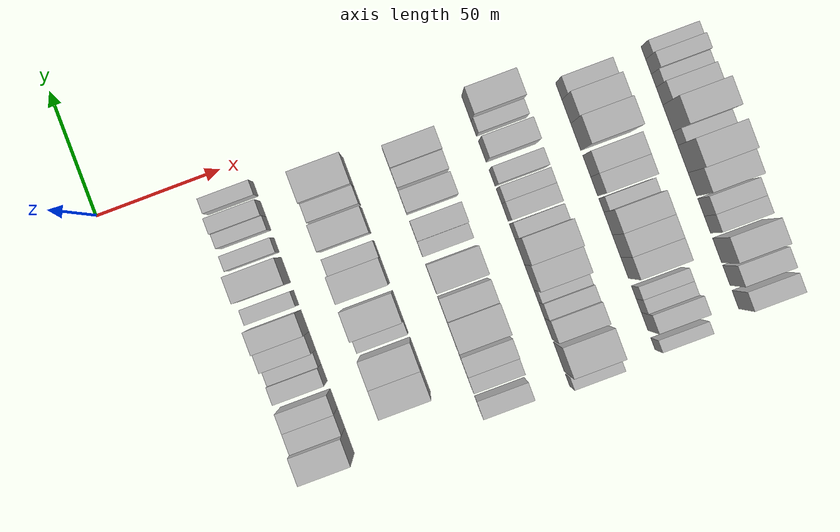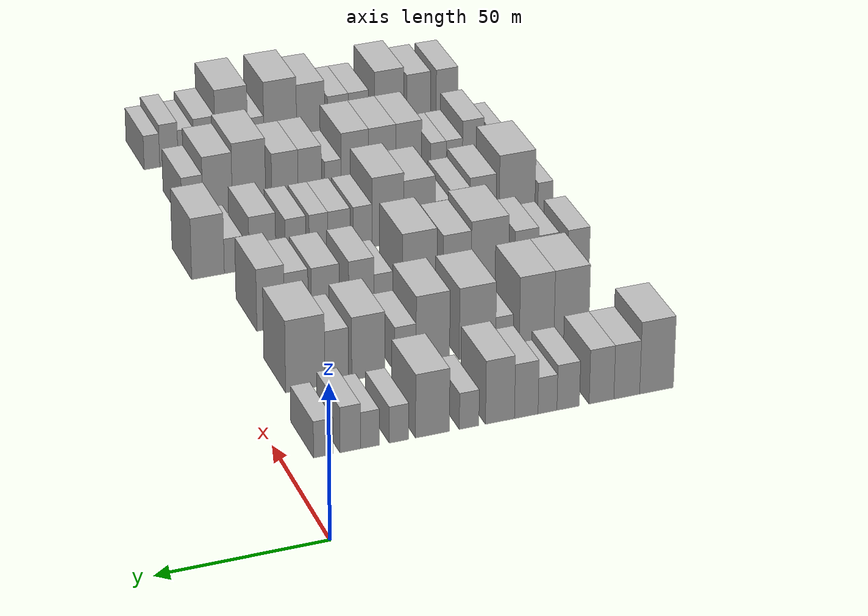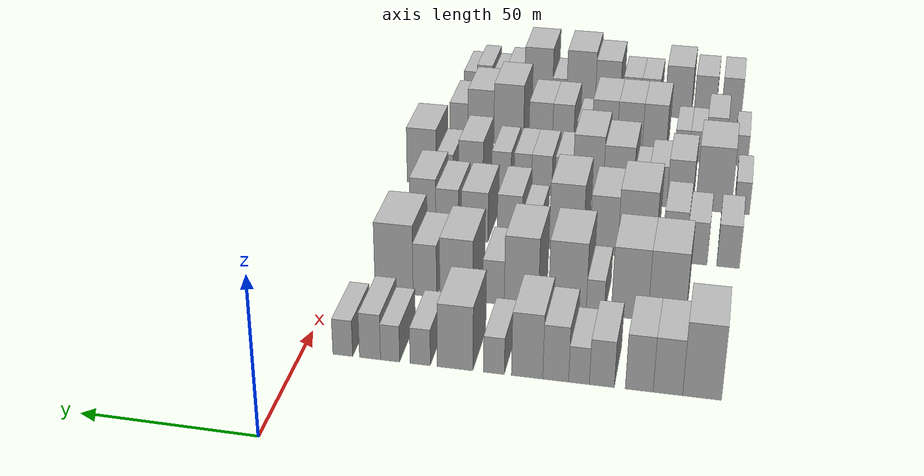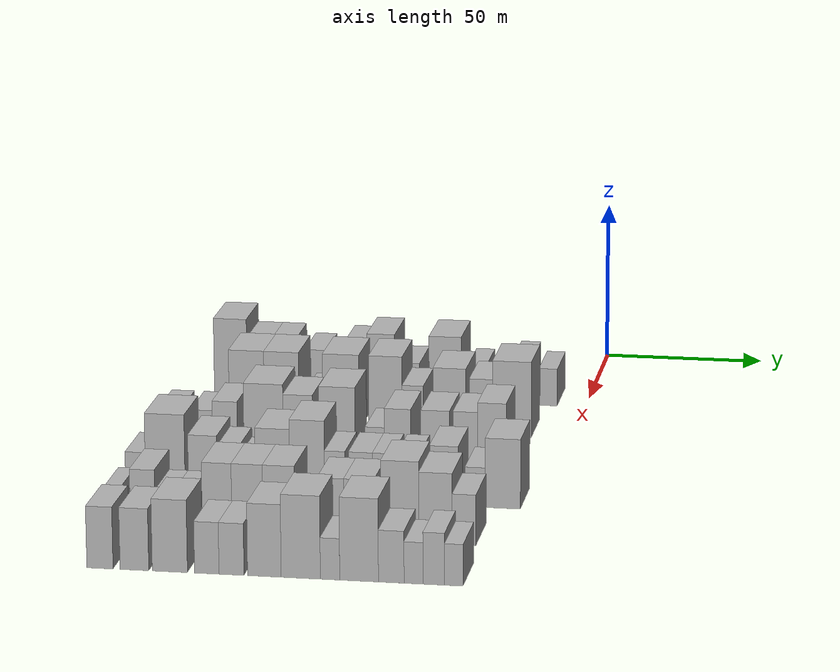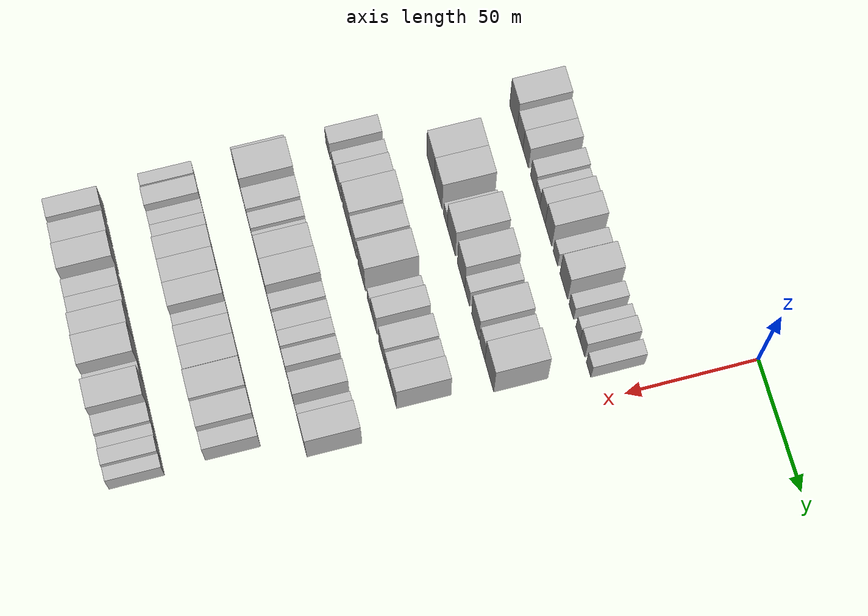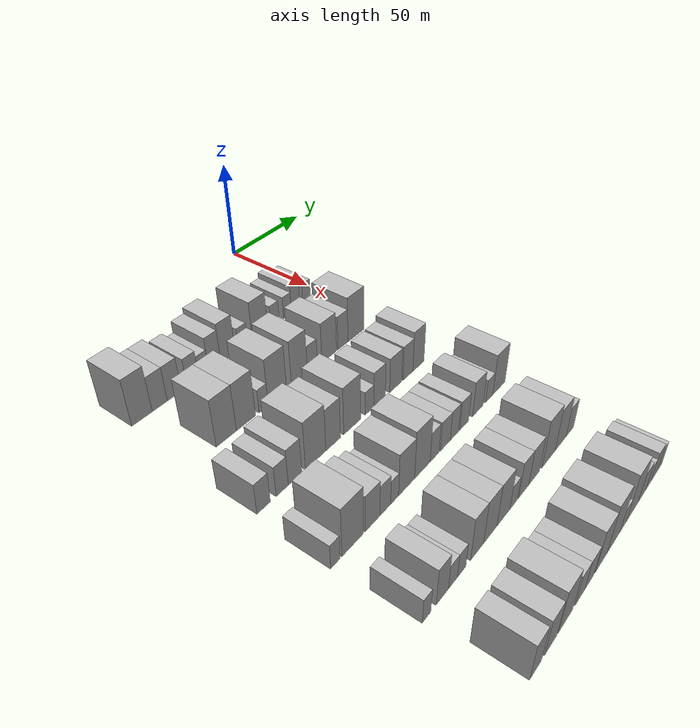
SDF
<sdf version="1.6">
 <world name="default">
  <model name="building_47">
   <static>1</static>
   <pose>50.0000 -112.9188 0 0.000000 0.000000 0.000000</pose>
   <link name="link">
    <pose>0 0 12.00 0 0 0</pose>
    <collision name="collision"><geometry><box><size>20.0000 10.5128 24.0000</size></box></geometry></collision>
    <visual name="visual">
     <cast_shadows>0</cast_shadows>
     <geometry><box><size>20.0000 10.5128 24.0000</size></box></geometry>
     <material>
      <script>
       <uri>model://HANNAS_wall/materials/scripts</uri>
       <uri>model://HANNAS_wall/materials/textures</uri>
       <name>vrc/HANNAS_wall</name>
      </script>
     </material>
    </visual>
   </link>
  </model>
  <model name="building_48">
   <static>1</static>
   <pose>50.0000 -103.6665 0 0.000000 0.000000 0.000000</pose>
   <link name="link">
    <pose>0 0 9.00 0 0 0</pose>
    <collision name="collision"><geometry><box><size>20.0000 7.9920 18.0000</size></box></geometry></collision>
    <visual name="visual">
     <cast_shadows>0</cast_shadows>
     <geometry><box><size>20.0000 7.9920 18.0000</size></box></geometry>
     <material>
      <script>
       <uri>model://HANNAS_wall/materials/scripts</uri>
       <uri>model://HANNAS_wall/materials/textures</uri>
       <name>vrc/HANNAS_wall</name>
      </script>
     </material>
    </visual>
   </link>
  </model>
  <model name="building_49">
   <static>1</static>
   <pose>50.0000 -95.8522 0 0.000000 0.000000 0.000000</pose>
   <link name="link">
    <pose>0 0 9.00 0 0 0</pose>
    <collision name="collision"><geometry><box><size>20.0000 7.6366 18.0000</size></box></geometry></collision>
    <visual name="visual">
     <cast_shadows>0</cast_shadows>
     <geometry><box><size>20.0000 7.6366 18.0000</size></box></geometry>
     <material>
      <script>
       <uri>model://HANNAS_wall/materials/scripts</uri>
       <uri>model://HANNAS_wall/materials/textures</uri>
       <name>vrc/HANNAS_wall</name>
      </script>
     </material>
    </visual>
   </link>
  </model>
  <model name="building_50">
   <static>1</static>
   <pose>50.0000 -85.5797 0 0.000000 0.000000 0.000000</pose>
   <link name="link">
    <pose>0 0 7.50 0 0 0</pose>
    <collision name="collision"><geometry><box><size>20.0000 6.9084 15.0000</size></box></geometry></collision>
    <visual name="visual">
     <cast_shadows>0</cast_shadows>
     <geometry><box><size>20.0000 6.9084 15.0000</size></box></geometry>
     <material>
      <script>
       <uri>model://HANNAS_wall/materials/scripts</uri>
       <uri>model://HANNAS_wall/materials/textures</uri>
       <name>vrc/HANNAS_wall</name>
      </script>
     </material>
    </visual>
   </link>
  </model>
  <model name="building_51">
   <static>1</static>
   <pose>50.0000 -79.2340 0 0.000000 0.000000 0.000000</pose>
   <link name="link">
    <pose>0 0 6.00 0 0 0</pose>
    <collision name="collision"><geometry><box><size>20.0000 5.7830 12.0000</size></box></geometry></collision>
    <visual name="visual">
     <cast_shadows>0</cast_shadows>
     <geometry><box><size>20.0000 5.7830 12.0000</size></box></geometry>
     <material>
      <script>
       <uri>model://HANNAS_wall/materials/scripts</uri>
       <uri>model://HANNAS_wall/materials/textures</uri>
       <name>vrc/HANNAS_wall</name>
      </script>
     </material>
    </visual>
   </link>
  </model>
  <model name="building_52">
   <static>1</static>
   <pose>50.0000 -72.7375 0 0.000000 0.000000 0.000000</pose>
   <link name="link">
    <pose>0 0 9.00 0 0 0</pose>
    <collision name="collision"><geometry><box><size>20.0000 7.2101 18.0000</size></box></geometry></collision>
    <visual name="visual">
     <cast_shadows>0</cast_shadows>
     <geometry><box><size>20.0000 7.2101 18.0000</size></box></geometry>
     <material>
      <script>
       <uri>model://HANNAS_wall/materials/scripts</uri>
       <uri>model://HANNAS_wall/materials/textures</uri>
       <name>vrc/HANNAS_wall</name>
      </script>
     </material>
    </visual>
   </link>
  </model>
  <model name="building_53">
   <static>1</static>
   <pose>50.0000 -64.7337 0 0.000000 0.000000 0.000000</pose>
   <link name="link">
    <pose>0 0 10.50 0 0 0</pose>
    <collision name="collision"><geometry><box><size>20.0000 8.7974 21.0000</size></box></geometry></collision>
    <visual name="visual">
     <cast_shadows>0</cast_shadows>
     <geometry><box><size>20.0000 8.7974 21.0000</size></box></geometry>
     <material>
      <script>
       <uri>model://HANNAS_wall/materials/scripts</uri>
       <uri>model://HANNAS_wall/materials/textures</uri>
       <name>vrc/HANNAS_wall</name>
      </script>
     </material>
    </visual>
   </link>
  </model>
  <model name="building_54">
   <static>1</static>
   <pose>50.0000 -55.3769 0 0.000000 0.000000 0.000000</pose>
   <link name="link">
    <pose>0 0 6.00 0 0 0</pose>
    <collision name="collision"><geometry><box><size>20.0000 5.9163 12.0000</size></box></geometry></collision>
    <visual name="visual">
     <cast_shadows>0</cast_shadows>
     <geometry><box><size>20.0000 5.9163 12.0000</size></box></geometry>
     <material>
      <script>
       <uri>model://HANNAS_wall/materials/scripts</uri>
       <uri>model://HANNAS_wall/materials/textures</uri>
       <name>vrc/HANNAS_wall</name>
      </script>
     </material>
    </visual>
   </link>
  </model>
  <model name="building_55">
   <static>1</static>
   <pose>50.0000 -44.3208 0 0.000000 0.000000 0.000000</pose>
   <link name="link">
    <pose>0 0 10.50 0 0 0</pose>
    <collision name="collision"><geometry><box><size>20.0000 10.1959 21.0000</size></box></geometry></collision>
    <visual name="visual">
     <cast_shadows>0</cast_shadows>
     <geometry><box><size>20.0000 10.1959 21.0000</size></box></geometry>
     <material>
      <script>
       <uri>model://HANNAS_wall/materials/scripts</uri>
       <uri>model://HANNAS_wall/materials/textures</uri>
       <name>vrc/HANNAS_wall</name>
      </script>
     </material>
    </visual>
   </link>
  </model>
  <model name="building_56">
   <static>1</static>
   <pose>50.0000 -34.2954 0 0.000000 0.000000 0.000000</pose>
   <link name="link">
    <pose>0 0 6.00 0 0 0</pose>
    <collision name="collision"><geometry><box><size>20.0000 5.8549 12.0000</size></box></geometry></collision>
    <visual name="visual">
     <cast_shadows>0</cast_shadows>
     <geometry><box><size>20.0000 5.8549 12.0000</size></box></geometry>
     <material>
      <script>
       <uri>model://HANNAS_wall/materials/scripts</uri>
       <uri>model://HANNAS_wall/materials/textures</uri>
       <name>vrc/HANNAS_wall</name>
      </script>
     </material>
    </visual>
   </link>
  </model>
  <model name="building_57">
   <static>1</static>
   <pose>50.0000 -25.5949 0 0.000000 0.000000 0.000000</pose>
   <link name="link">
    <pose>0 0 6.00 0 0 0</pose>
    <collision name="collision"><geometry><box><size>20.0000 5.5460 12.0000</size></box></geometry></collision>
    <visual name="visual">
     <cast_shadows>0</cast_shadows>
     <geometry><box><size>20.0000 5.5460 12.0000</size></box></geometry>
     <material>
      <script>
       <uri>model://HANNAS_wall/materials/scripts</uri>
       <uri>model://HANNAS_wall/materials/textures</uri>
       <name>vrc/HANNAS_wall</name>
      </script>
     </material>
    </visual>
   </link>
  </model>
  <model name="building_58">
   <static>1</static>
   <pose>50.0000 -19.7453 0 0.000000 0.000000 0.000000</pose>
   <link name="link">
    <pose>0 0 7.50 0 0 0</pose>
    <collision name="collision"><geometry><box><size>20.0000 6.1533 15.0000</size></box></geometry></collision>
    <visual name="visual">
     <cast_shadows>0</cast_shadows>
     <geometry><box><size>20.0000 6.1533 15.0000</size></box></geometry>
     <material>
      <script>
       <uri>model://HANNAS_wall/materials/scripts</uri>
       <uri>model://HANNAS_wall/materials/textures</uri>
       <name>vrc/HANNAS_wall</name>
      </script>
     </material>
    </visual>
   </link>
  </model>
  <model name="building_59">
   <static>1</static>
   <pose>50.0000 -11.7610 0 0.000000 0.000000 0.000000</pose>
   <link name="link">
    <pose>0 0 6.00 0 0 0</pose>
    <collision name="collision"><geometry><box><size>20.0000 5.8154 12.0000</size></box></geometry></collision>
    <visual name="visual">
     <cast_shadows>0</cast_shadows>
     <geometry><box><size>20.0000 5.8154 12.0000</size></box></geometry>
     <material>
      <script>
       <uri>model://HANNAS_wall/materials/scripts</uri>
       <uri>model://HANNAS_wall/materials/textures</uri>
       <name>vrc/HANNAS_wall</name>
      </script>
     </material>
    </visual>
   </link>
  </model>
  <model name="building_162">
   <static>1</static>
   <pose>85.0000 -100.6968 0 0.000000 0.000000 0.000000</pose>
   <link name="link">
    <pose>0 0 12.00 0 0 0</pose>
    <collision name="collision"><geometry><box><size>20.0000 11.0074 24.0000</size></box></geometry></collision>
    <visual name="visual">
     <cast_shadows>0</cast_shadows>
     <geometry><box><size>20.0000 11.0074 24.0000</size></box></geometry>
     <material>
      <script>
       <uri>model://HANNAS_wall/materials/scripts</uri>
       <uri>model://HANNAS_wall/materials/textures</uri>
       <name>vrc/HANNAS_wall</name>
      </script>
     </material>
    </visual>
   </link>
  </model>
  <model name="building_163">
   <static>1</static>
   <pose>85.0000 -89.7469 0 0.000000 0.000000 0.000000</pose>
   <link name="link">
    <pose>0 0 12.00 0 0 0</pose>
    <collision name="collision"><geometry><box><size>20.0000 10.8924 24.0000</size></box></geometry></collision>
    <visual name="visual">
     <cast_shadows>0</cast_shadows>
     <geometry><box><size>20.0000 10.8924 24.0000</size></box></geometry>
     <material>
      <script>
       <uri>model://HANNAS_wall/materials/scripts</uri>
       <uri>model://HANNAS_wall/materials/textures</uri>
       <name>vrc/HANNAS_wall</name>
      </script>
     </material>
    </visual>
   </link>
  </model>
  <model name="building_164">
   <static>1</static>
   <pose>85.0000 -79.5956 0 0.000000 0.000000 0.000000</pose>
   <link name="link">
    <pose>0 0 6.00 0 0 0</pose>
    <collision name="collision"><geometry><box><size>20.0000 5.4102 12.0000</size></box></geometry></collision>
    <visual name="visual">
     <cast_shadows>0</cast_shadows>
     <geometry><box><size>20.0000 5.4102 12.0000</size></box></geometry>
     <material>
      <script>
       <uri>model://HANNAS_wall/materials/scripts</uri>
       <uri>model://HANNAS_wall/materials/textures</uri>
       <name>vrc/HANNAS_wall</name>
      </script>
     </material>
    </visual>
   </link>
  </model>
  <model name="building_165">
   <static>1</static>
   <pose>85.0000 -71.2305 0 0.000000 0.000000 0.000000</pose>
   <link name="link">
    <pose>0 0 12.00 0 0 0</pose>
    <collision name="collision"><geometry><box><size>20.0000 11.3200 24.0000</size></box></geometry></collision>
    <visual name="visual">
     <cast_shadows>0</cast_shadows>
     <geometry><box><size>20.0000 11.3200 24.0000</size></box></geometry>
     <material>
      <script>
       <uri>model://HANNAS_wall/materials/scripts</uri>
       <uri>model://HANNAS_wall/materials/textures</uri>
       <name>vrc/HANNAS_wall</name>
      </script>
     </material>
    </visual>
   </link>
  </model>
  <model name="building_166">
   <static>1</static>
   <pose>85.0000 -57.3909 0 0.000000 0.000000 0.000000</pose>
   <link name="link">
    <pose>0 0 12.00 0 0 0</pose>
    <collision name="collision"><geometry><box><size>20.0000 10.3591 24.0000</size></box></geometry></collision>
    <visual name="visual">
     <cast_shadows>0</cast_shadows>
     <geometry><box><size>20.0000 10.3591 24.0000</size></box></geometry>
     <material>
      <script>
       <uri>model://HANNAS_wall/materials/scripts</uri>
       <uri>model://HANNAS_wall/materials/textures</uri>
       <name>vrc/HANNAS_wall</name>
      </script>
     </material>
    </visual>
   </link>
  </model>
  <model name="building_167">
   <static>1</static>
   <pose>85.0000 -48.9326 0 0.000000 0.000000 0.000000</pose>
   <link name="link">
    <pose>0 0 7.50 0 0 0</pose>
    <collision name="collision"><geometry><box><size>20.0000 6.5575 15.0000</size></box></geometry></collision>
    <visual name="visual">
     <cast_shadows>0</cast_shadows>
     <geometry><box><size>20.0000 6.5575 15.0000</size></box></geometry>
     <material>
      <script>
       <uri>model://HANNAS_wall/materials/scripts</uri>
       <uri>model://HANNAS_wall/materials/textures</uri>
       <name>vrc/HANNAS_wall</name>
      </script>
     </material>
    </visual>
   </link>
  </model>
  <model name="building_168">
   <static>1</static>
   <pose>85.0000 -37.5633 0 0.000000 0.000000 0.000000</pose>
   <link name="link">
    <pose>0 0 10.50 0 0 0</pose>
    <collision name="collision"><geometry><box><size>20.0000 10.1811 21.0000</size></box></geometry></collision>
    <visual name="visual">
     <cast_shadows>0</cast_shadows>
     <geometry><box><size>20.0000 10.1811 21.0000</size></box></geometry>
     <material>
      <script>
       <uri>model://HANNAS_wall/materials/scripts</uri>
       <uri>model://HANNAS_wall/materials/textures</uri>
       <name>vrc/HANNAS_wall</name>
      </script>
     </material>
    </visual>
   </link>
  </model>
  <model name="building_169">
   <static>1</static>
   <pose>85.0000 -27.8600 0 0.000000 0.000000 0.000000</pose>
   <link name="link">
    <pose>0 0 9.00 0 0 0</pose>
    <collision name="collision"><geometry><box><size>20.0000 7.2257 18.0000</size></box></geometry></collision>
    <visual name="visual">
     <cast_shadows>0</cast_shadows>
     <geometry><box><size>20.0000 7.2257 18.0000</size></box></geometry>
     <material>
      <script>
       <uri>model://HANNAS_wall/materials/scripts</uri>
       <uri>model://HANNAS_wall/materials/textures</uri>
       <name>vrc/HANNAS_wall</name>
      </script>
     </material>
    </visual>
   </link>
  </model>
  <model name="building_170">
   <static>1</static>
   <pose>85.0000 -18.3015 0 0.000000 0.000000 0.000000</pose>
   <link name="link">
    <pose>0 0 12.00 0 0 0</pose>
    <collision name="collision"><geometry><box><size>20.0000 11.8913 24.0000</size></box></geometry></collision>
    <visual name="visual">
     <cast_shadows>0</cast_shadows>
     <geometry><box><size>20.0000 11.8913 24.0000</size></box></geometry>
     <material>
      <script>
       <uri>model://HANNAS_wall/materials/scripts</uri>
       <uri>model://HANNAS_wall/materials/textures</uri>
       <name>vrc/HANNAS_wall</name>
      </script>
     </material>
    </visual>
   </link>
  </model>
  <model name="building_291">
   <static>1</static>
   <pose>120.0000 -117.1912 0 0.000000 0.000000 0.000000</pose>
   <link name="link">
    <pose>0 0 7.50 0 0 0</pose>
    <collision name="collision"><geometry><box><size>20.0000 7.0125 15.0000</size></box></geometry></collision>
    <visual name="visual">
     <cast_shadows>0</cast_shadows>
     <geometry><box><size>20.0000 7.0125 15.0000</size></box></geometry>
     <material>
      <script>
       <uri>model://HANNAS_wall/materials/scripts</uri>
       <uri>model://HANNAS_wall/materials/textures</uri>
       <name>vrc/HANNAS_wall</name>
      </script>
     </material>
    </visual>
   </link>
  </model>
  <model name="building_292">
   <static>1</static>
   <pose>120.0000 -107.3934 0 0.000000 0.000000 0.000000</pose>
   <link name="link">
    <pose>0 0 7.50 0 0 0</pose>
    <collision name="collision"><geometry><box><size>20.0000 6.5832 15.0000</size></box></geometry></collision>
    <visual name="visual">
     <cast_shadows>0</cast_shadows>
     <geometry><box><size>20.0000 6.5832 15.0000</size></box></geometry>
     <material>
      <script>
       <uri>model://HANNAS_wall/materials/scripts</uri>
       <uri>model://HANNAS_wall/materials/textures</uri>
       <name>vrc/HANNAS_wall</name>
      </script>
     </material>
    </visual>
   </link>
  </model>
  <model name="building_293">
   <static>1</static>
   <pose>120.0000 -100.3150 0 0.000000 0.000000 0.000000</pose>
   <link name="link">
    <pose>0 0 9.00 0 0 0</pose>
    <collision name="collision"><geometry><box><size>20.0000 7.5734 18.0000</size></box></geometry></collision>
    <visual name="visual">
     <cast_shadows>0</cast_shadows>
     <geometry><box><size>20.0000 7.5734 18.0000</size></box></geometry>
     <material>
      <script>
       <uri>model://HANNAS_wall/materials/scripts</uri>
       <uri>model://HANNAS_wall/materials/textures</uri>
       <name>vrc/HANNAS_wall</name>
      </script>
     </material>
    </visual>
   </link>
  </model>
  <model name="building_294">
   <static>1</static>
   <pose>120.0000 -88.5420 0 0.000000 0.000000 0.000000</pose>
   <link name="link">
    <pose>0 0 12.00 0 0 0</pose>
    <collision name="collision"><geometry><box><size>20.0000 11.9726 24.0000</size></box></geometry></collision>
    <visual name="visual">
     <cast_shadows>0</cast_shadows>
     <geometry><box><size>20.0000 11.9726 24.0000</size></box></geometry>
     <material>
      <script>
       <uri>model://HANNAS_wall/materials/scripts</uri>
       <uri>model://HANNAS_wall/materials/textures</uri>
       <name>vrc/HANNAS_wall</name>
      </script>
     </material>
    </visual>
   </link>
  </model>
  <model name="building_295">
   <static>1</static>
   <pose>120.0000 -78.0978 0 0.000000 0.000000 0.000000</pose>
   <link name="link">
    <pose>0 0 10.50 0 0 0</pose>
    <collision name="collision"><geometry><box><size>20.0000 8.9159 21.0000</size></box></geometry></collision>
    <visual name="visual">
     <cast_shadows>0</cast_shadows>
     <geometry><box><size>20.0000 8.9159 21.0000</size></box></geometry>
     <material>
      <script>
       <uri>model://HANNAS_wall/materials/scripts</uri>
       <uri>model://HANNAS_wall/materials/textures</uri>
       <name>vrc/HANNAS_wall</name>
      </script>
     </material>
    </visual>
   </link>
  </model>
  <model name="building_296">
   <static>1</static>
   <pose>120.0000 -66.1572 0 0.000000 0.000000 0.000000</pose>
   <link name="link">
    <pose>0 0 12.00 0 0 0</pose>
    <collision name="collision"><geometry><box><size>20.0000 10.9653 24.0000</size></box></geometry></collision>
    <visual name="visual">
     <cast_shadows>0</cast_shadows>
     <geometry><box><size>20.0000 10.9653 24.0000</size></box></geometry>
     <material>
      <script>
       <uri>model://HANNAS_wall/materials/scripts</uri>
       <uri>model://HANNAS_wall/materials/textures</uri>
       <name>vrc/HANNAS_wall</name>
      </script>
     </material>
    </visual>
   </link>
  </model>
  <model name="building_297">
   <static>1</static>
   <pose>120.0000 -54.7357 0 0.000000 0.000000 0.000000</pose>
   <link name="link">
    <pose>0 0 6.00 0 0 0</pose>
    <collision name="collision"><geometry><box><size>20.0000 5.8779 12.0000</size></box></geometry></collision>
    <visual name="visual">
     <cast_shadows>0</cast_shadows>
     <geometry><box><size>20.0000 5.8779 12.0000</size></box></geometry>
     <material>
      <script>
       <uri>model://HANNAS_wall/materials/scripts</uri>
       <uri>model://HANNAS_wall/materials/textures</uri>
       <name>vrc/HANNAS_wall</name>
      </script>
     </material>
    </visual>
   </link>
  </model>
  <model name="building_298">
   <static>1</static>
   <pose>120.0000 -47.8163 0 0.000000 0.000000 0.000000</pose>
   <link name="link">
    <pose>0 0 9.00 0 0 0</pose>
    <collision name="collision"><geometry><box><size>20.0000 7.9607 18.0000</size></box></geometry></collision>
    <visual name="visual">
     <cast_shadows>0</cast_shadows>
     <geometry><box><size>20.0000 7.9607 18.0000</size></box></geometry>
     <material>
      <script>
       <uri>model://HANNAS_wall/materials/scripts</uri>
       <uri>model://HANNAS_wall/materials/textures</uri>
       <name>vrc/HANNAS_wall</name>
      </script>
     </material>
    </visual>
   </link>
  </model>
  <model name="building_299">
   <static>1</static>
   <pose>120.0000 -36.4912 0 0.000000 0.000000 0.000000</pose>
   <link name="link">
    <pose>0 0 9.00 0 0 0</pose>
    <collision name="collision"><geometry><box><size>20.0000 8.6896 18.0000</size></box></geometry></collision>
    <visual name="visual">
     <cast_shadows>0</cast_shadows>
     <geometry><box><size>20.0000 8.6896 18.0000</size></box></geometry>
     <material>
      <script>
       <uri>model://HANNAS_wall/materials/scripts</uri>
       <uri>model://HANNAS_wall/materials/textures</uri>
       <name>vrc/HANNAS_wall</name>
      </script>
     </material>
    </visual>
   </link>
  </model>
  <model name="building_300">
   <static>1</static>
   <pose>120.0000 -27.4433 0 0.000000 0.000000 0.000000</pose>
   <link name="link">
    <pose>0 0 9.00 0 0 0</pose>
    <collision name="collision"><geometry><box><size>20.0000 7.4063 18.0000</size></box></geometry></collision>
    <visual name="visual">
     <cast_shadows>0</cast_shadows>
     <geometry><box><size>20.0000 7.4063 18.0000</size></box></geometry>
     <material>
      <script>
       <uri>model://HANNAS_wall/materials/scripts</uri>
       <uri>model://HANNAS_wall/materials/textures</uri>
       <name>vrc/HANNAS_wall</name>
      </script>
     </material>
    </visual>
   </link>
  </model>
  <model name="building_301">
   <static>1</static>
   <pose>120.0000 -19.4587 0 0.000000 0.000000 0.000000</pose>
   <link name="link">
    <pose>0 0 10.50 0 0 0</pose>
    <collision name="collision"><geometry><box><size>20.0000 8.5629 21.0000</size></box></geometry></collision>
    <visual name="visual">
     <cast_shadows>0</cast_shadows>
     <geometry><box><size>20.0000 8.5629 21.0000</size></box></geometry>
     <material>
      <script>
       <uri>model://HANNAS_wall/materials/scripts</uri>
       <uri>model://HANNAS_wall/materials/textures</uri>
       <name>vrc/HANNAS_wall</name>
      </script>
     </material>
    </visual>
   </link>
  </model>
  <model name="building_412">
   <static>1</static>
   <pose>155.0000 -120.3640 0 0.000000 0.000000 0.000000</pose>
   <link name="link">
    <pose>0 0 6.00 0 0 0</pose>
    <collision name="collision"><geometry><box><size>20.0000 4.9772 12.0000</size></box></geometry></collision>
    <visual name="visual">
     <cast_shadows>0</cast_shadows>
     <geometry><box><size>20.0000 4.9772 12.0000</size></box></geometry>
     <material>
      <script>
       <uri>model://HANNAS_wall/materials/scripts</uri>
       <uri>model://HANNAS_wall/materials/textures</uri>
       <name>vrc/HANNAS_wall</name>
      </script>
     </material>
    </visual>
   </link>
  </model>
  <model name="building_413">
   <static>1</static>
   <pose>155.0000 -110.9566 0 0.000000 0.000000 0.000000</pose>
   <link name="link">
    <pose>0 0 12.00 0 0 0</pose>
    <collision name="collision"><geometry><box><size>20.0000 11.8376 24.0000</size></box></geometry></collision>
    <visual name="visual">
     <cast_shadows>0</cast_shadows>
     <geometry><box><size>20.0000 11.8376 24.0000</size></box></geometry>
     <material>
      <script>
       <uri>model://HANNAS_wall/materials/scripts</uri>
       <uri>model://HANNAS_wall/materials/textures</uri>
       <name>vrc/HANNAS_wall</name>
      </script>
     </material>
    </visual>
   </link>
  </model>
  <model name="building_414">
   <static>1</static>
   <pose>155.0000 -99.7479 0 0.000000 0.000000 0.000000</pose>
   <link name="link">
    <pose>0 0 9.00 0 0 0</pose>
    <collision name="collision"><geometry><box><size>20.0000 8.5798 18.0000</size></box></geometry></collision>
    <visual name="visual">
     <cast_shadows>0</cast_shadows>
     <geometry><box><size>20.0000 8.5798 18.0000</size></box></geometry>
     <material>
      <script>
       <uri>model://HANNAS_wall/materials/scripts</uri>
       <uri>model://HANNAS_wall/materials/textures</uri>
       <name>vrc/HANNAS_wall</name>
      </script>
     </material>
    </visual>
   </link>
  </model>
  <model name="building_415">
   <static>1</static>
   <pose>155.0000 -92.2353 0 0.000000 0.000000 0.000000</pose>
   <link name="link">
    <pose>0 0 7.50 0 0 0</pose>
    <collision name="collision"><geometry><box><size>20.0000 6.4455 15.0000</size></box></geometry></collision>
    <visual name="visual">
     <cast_shadows>0</cast_shadows>
     <geometry><box><size>20.0000 6.4455 15.0000</size></box></geometry>
     <material>
      <script>
       <uri>model://HANNAS_wall/materials/scripts</uri>
       <uri>model://HANNAS_wall/materials/textures</uri>
       <name>vrc/HANNAS_wall</name>
      </script>
     </material>
    </visual>
   </link>
  </model>
  <model name="building_416">
   <static>1</static>
   <pose>155.0000 -86.5764 0 0.000000 0.000000 0.000000</pose>
   <link name="link">
    <pose>0 0 6.00 0 0 0</pose>
    <collision name="collision"><geometry><box><size>20.0000 4.8725 12.0000</size></box></geometry></collision>
    <visual name="visual">
     <cast_shadows>0</cast_shadows>
     <geometry><box><size>20.0000 4.8725 12.0000</size></box></geometry>
     <material>
      <script>
       <uri>model://HANNAS_wall/materials/scripts</uri>
       <uri>model://HANNAS_wall/materials/textures</uri>
       <name>vrc/HANNAS_wall</name>
      </script>
     </material>
    </visual>
   </link>
  </model>
  <model name="building_417">
   <static>1</static>
   <pose>155.0000 -79.0370 0 0.000000 0.000000 0.000000</pose>
   <link name="link">
    <pose>0 0 10.50 0 0 0</pose>
    <collision name="collision"><geometry><box><size>20.0000 10.2062 21.0000</size></box></geometry></collision>
    <visual name="visual">
     <cast_shadows>0</cast_shadows>
     <geometry><box><size>20.0000 10.2062 21.0000</size></box></geometry>
     <material>
      <script>
       <uri>model://HANNAS_wall/materials/scripts</uri>
       <uri>model://HANNAS_wall/materials/textures</uri>
       <name>vrc/HANNAS_wall</name>
      </script>
     </material>
    </visual>
   </link>
  </model>
  <model name="building_418">
   <static>1</static>
   <pose>155.0000 -68.7538 0 0.000000 0.000000 0.000000</pose>
   <link name="link">
    <pose>0 0 12.00 0 0 0</pose>
    <collision name="collision"><geometry><box><size>20.0000 10.3601 24.0000</size></box></geometry></collision>
    <visual name="visual">
     <cast_shadows>0</cast_shadows>
     <geometry><box><size>20.0000 10.3601 24.0000</size></box></geometry>
     <material>
      <script>
       <uri>model://HANNAS_wall/materials/scripts</uri>
       <uri>model://HANNAS_wall/materials/textures</uri>
       <name>vrc/HANNAS_wall</name>
      </script>
     </material>
    </visual>
   </link>
  </model>
  <model name="building_419">
   <static>1</static>
   <pose>155.0000 -60.5380 0 0.000000 0.000000 0.000000</pose>
   <link name="link">
    <pose>0 0 7.50 0 0 0</pose>
    <collision name="collision"><geometry><box><size>20.0000 6.0716 15.0000</size></box></geometry></collision>
    <visual name="visual">
     <cast_shadows>0</cast_shadows>
     <geometry><box><size>20.0000 6.0716 15.0000</size></box></geometry>
     <material>
      <script>
       <uri>model://HANNAS_wall/materials/scripts</uri>
       <uri>model://HANNAS_wall/materials/textures</uri>
       <name>vrc/HANNAS_wall</name>
      </script>
     </material>
    </visual>
   </link>
  </model>
  <model name="building_420">
   <static>1</static>
   <pose>155.0000 -52.9637 0 0.000000 0.000000 0.000000</pose>
   <link name="link">
    <pose>0 0 7.50 0 0 0</pose>
    <collision name="collision"><geometry><box><size>20.0000 7.0770 15.0000</size></box></geometry></collision>
    <visual name="visual">
     <cast_shadows>0</cast_shadows>
     <geometry><box><size>20.0000 7.0770 15.0000</size></box></geometry>
     <material>
      <script>
       <uri>model://HANNAS_wall/materials/scripts</uri>
       <uri>model://HANNAS_wall/materials/textures</uri>
       <name>vrc/HANNAS_wall</name>
      </script>
     </material>
    </visual>
   </link>
  </model>
  <model name="building_421">
   <static>1</static>
   <pose>155.0000 -46.4131 0 0.000000 0.000000 0.000000</pose>
   <link name="link">
    <pose>0 0 7.50 0 0 0</pose>
    <collision name="collision"><geometry><box><size>20.0000 6.0243 15.0000</size></box></geometry></collision>
    <visual name="visual">
     <cast_shadows>0</cast_shadows>
     <geometry><box><size>20.0000 6.0243 15.0000</size></box></geometry>
     <material>
      <script>
       <uri>model://HANNAS_wall/materials/scripts</uri>
       <uri>model://HANNAS_wall/materials/textures</uri>
       <name>vrc/HANNAS_wall</name>
      </script>
     </material>
    </visual>
   </link>
  </model>
  <model name="building_422">
   <static>1</static>
   <pose>155.0000 -39.0615 0 0.000000 0.000000 0.000000</pose>
   <link name="link">
    <pose>0 0 7.50 0 0 0</pose>
    <collision name="collision"><geometry><box><size>20.0000 6.6788 15.0000</size></box></geometry></collision>
    <visual name="visual">
     <cast_shadows>0</cast_shadows>
     <geometry><box><size>20.0000 6.6788 15.0000</size></box></geometry>
     <material>
      <script>
       <uri>model://HANNAS_wall/materials/scripts</uri>
       <uri>model://HANNAS_wall/materials/textures</uri>
       <name>vrc/HANNAS_wall</name>
      </script>
     </material>
    </visual>
   </link>
  </model>
  <model name="building_423">
   <static>1</static>
   <pose>155.0000 -28.4978 0 0.000000 0.000000 0.000000</pose>
   <link name="link">
    <pose>0 0 9.00 0 0 0</pose>
    <collision name="collision"><geometry><box><size>20.0000 8.4485 18.0000</size></box></geometry></collision>
    <visual name="visual">
     <cast_shadows>0</cast_shadows>
     <geometry><box><size>20.0000 8.4485 18.0000</size></box></geometry>
     <material>
      <script>
       <uri>model://HANNAS_wall/materials/scripts</uri>
       <uri>model://HANNAS_wall/materials/textures</uri>
       <name>vrc/HANNAS_wall</name>
      </script>
     </material>
    </visual>
   </link>
  </model>
  <model name="building_424">
   <static>1</static>
   <pose>155.0000 -19.3086 0 0.000000 0.000000 0.000000</pose>
   <link name="link">
    <pose>0 0 6.00 0 0 0</pose>
    <collision name="collision"><geometry><box><size>20.0000 5.9300 12.0000</size></box></geometry></collision>
    <visual name="visual">
     <cast_shadows>0</cast_shadows>
     <geometry><box><size>20.0000 5.9300 12.0000</size></box></geometry>
     <material>
      <script>
       <uri>model://HANNAS_wall/materials/scripts</uri>
       <uri>model://HANNAS_wall/materials/textures</uri>
       <name>vrc/HANNAS_wall</name>
      </script>
     </material>
    </visual>
   </link>
  </model>
  <model name="building_425">
   <static>1</static>
   <pose>155.0000 -11.1890 0 0.000000 0.000000 0.000000</pose>
   <link name="link">
    <pose>0 0 10.50 0 0 0</pose>
    <collision name="collision"><geometry><box><size>20.0000 10.3091 21.0000</size></box></geometry></collision>
    <visual name="visual">
     <cast_shadows>0</cast_shadows>
     <geometry><box><size>20.0000 10.3091 21.0000</size></box></geometry>
     <material>
      <script>
       <uri>model://HANNAS_wall/materials/scripts</uri>
       <uri>model://HANNAS_wall/materials/textures</uri>
       <name>vrc/HANNAS_wall</name>
      </script>
     </material>
    </visual>
   </link>
  </model>
  <model name="building_532">
   <static>1</static>
   <pose>190.0000 -118.8578 0 0.000000 0.000000 0.000000</pose>
   <link name="link">
    <pose>0 0 6.00 0 0 0</pose>
    <collision name="collision"><geometry><box><size>20.0000 4.8146 12.0000</size></box></geometry></collision>
    <visual name="visual">
     <cast_shadows>0</cast_shadows>
     <geometry><box><size>20.0000 4.8146 12.0000</size></box></geometry>
     <material>
      <script>
       <uri>model://HANNAS_wall/materials/scripts</uri>
       <uri>model://HANNAS_wall/materials/textures</uri>
       <name>vrc/HANNAS_wall</name>
      </script>
     </material>
    </visual>
   </link>
  </model>
  <model name="building_533">
   <static>1</static>
   <pose>190.0000 -109.8409 0 0.000000 0.000000 0.000000</pose>
   <link name="link">
    <pose>0 0 9.00 0 0 0</pose>
    <collision name="collision"><geometry><box><size>20.0000 7.2192 18.0000</size></box></geometry></collision>
    <visual name="visual">
     <cast_shadows>0</cast_shadows>
     <geometry><box><size>20.0000 7.2192 18.0000</size></box></geometry>
     <material>
      <script>
       <uri>model://HANNAS_wall/materials/scripts</uri>
       <uri>model://HANNAS_wall/materials/textures</uri>
       <name>vrc/HANNAS_wall</name>
      </script>
     </material>
    </visual>
   </link>
  </model>
  <model name="building_534">
   <static>1</static>
   <pose>190.0000 -103.4923 0 0.000000 0.000000 0.000000</pose>
   <link name="link">
    <pose>0 0 6.00 0 0 0</pose>
    <collision name="collision"><geometry><box><size>20.0000 5.4782 12.0000</size></box></geometry></collision>
    <visual name="visual">
     <cast_shadows>0</cast_shadows>
     <geometry><box><size>20.0000 5.4782 12.0000</size></box></geometry>
     <material>
      <script>
       <uri>model://HANNAS_wall/materials/scripts</uri>
       <uri>model://HANNAS_wall/materials/textures</uri>
       <name>vrc/HANNAS_wall</name>
      </script>
     </material>
    </visual>
   </link>
  </model>
  <model name="building_535">
   <static>1</static>
   <pose>190.0000 -98.1492 0 0.000000 0.000000 0.000000</pose>
   <link name="link">
    <pose>0 0 6.00 0 0 0</pose>
    <collision name="collision"><geometry><box><size>20.0000 5.2079 12.0000</size></box></geometry></collision>
    <visual name="visual">
     <cast_shadows>0</cast_shadows>
     <geometry><box><size>20.0000 5.2079 12.0000</size></box></geometry>
     <material>
      <script>
       <uri>model://HANNAS_wall/materials/scripts</uri>
       <uri>model://HANNAS_wall/materials/textures</uri>
       <name>vrc/HANNAS_wall</name>
      </script>
     </material>
    </visual>
   </link>
  </model>
  <model name="building_536">
   <static>1</static>
   <pose>190.0000 -88.2563 0 0.000000 0.000000 0.000000</pose>
   <link name="link">
    <pose>0 0 10.50 0 0 0</pose>
    <collision name="collision"><geometry><box><size>20.0000 8.5779 21.0000</size></box></geometry></collision>
    <visual name="visual">
     <cast_shadows>0</cast_shadows>
     <geometry><box><size>20.0000 8.5779 21.0000</size></box></geometry>
     <material>
      <script>
       <uri>model://HANNAS_wall/materials/scripts</uri>
       <uri>model://HANNAS_wall/materials/textures</uri>
       <name>vrc/HANNAS_wall</name>
      </script>
     </material>
    </visual>
   </link>
  </model>
  <model name="building_537">
   <static>1</static>
   <pose>190.0000 -79.4680 0 0.000000 0.000000 0.000000</pose>
   <link name="link">
    <pose>0 0 10.50 0 0 0</pose>
    <collision name="collision"><geometry><box><size>20.0000 8.9988 21.0000</size></box></geometry></collision>
    <visual name="visual">
     <cast_shadows>0</cast_shadows>
     <geometry><box><size>20.0000 8.9988 21.0000</size></box></geometry>
     <material>
      <script>
       <uri>model://HANNAS_wall/materials/scripts</uri>
       <uri>model://HANNAS_wall/materials/textures</uri>
       <name>vrc/HANNAS_wall</name>
      </script>
     </material>
    </visual>
   </link>
  </model>
  <model name="building_538">
   <static>1</static>
   <pose>190.0000 -70.3899 0 0.000000 0.000000 0.000000</pose>
   <link name="link">
    <pose>0 0 10.50 0 0 0</pose>
    <collision name="collision"><geometry><box><size>20.0000 9.1573 21.0000</size></box></geometry></collision>
    <visual name="visual">
     <cast_shadows>0</cast_shadows>
     <geometry><box><size>20.0000 9.1573 21.0000</size></box></geometry>
     <material>
      <script>
       <uri>model://HANNAS_wall/materials/scripts</uri>
       <uri>model://HANNAS_wall/materials/textures</uri>
       <name>vrc/HANNAS_wall</name>
      </script>
     </material>
    </visual>
   </link>
  </model>
  <model name="building_539">
   <static>1</static>
   <pose>190.0000 -63.0864 0 0.000000 0.000000 0.000000</pose>
   <link name="link">
    <pose>0 0 6.00 0 0 0</pose>
    <collision name="collision"><geometry><box><size>20.0000 5.4497 12.0000</size></box></geometry></collision>
    <visual name="visual">
     <cast_shadows>0</cast_shadows>
     <geometry><box><size>20.0000 5.4497 12.0000</size></box></geometry>
     <material>
      <script>
       <uri>model://HANNAS_wall/materials/scripts</uri>
       <uri>model://HANNAS_wall/materials/textures</uri>
       <name>vrc/HANNAS_wall</name>
      </script>
     </material>
    </visual>
   </link>
  </model>
  <model name="building_540">
   <static>1</static>
   <pose>190.0000 -55.5128 0 0.000000 0.000000 0.000000</pose>
   <link name="link">
    <pose>0 0 9.00 0 0 0</pose>
    <collision name="collision"><geometry><box><size>20.0000 7.6975 18.0000</size></box></geometry></collision>
    <visual name="visual">
     <cast_shadows>0</cast_shadows>
     <geometry><box><size>20.0000 7.6975 18.0000</size></box></geometry>
     <material>
      <script>
       <uri>model://HANNAS_wall/materials/scripts</uri>
       <uri>model://HANNAS_wall/materials/textures</uri>
       <name>vrc/HANNAS_wall</name>
      </script>
     </material>
    </visual>
   </link>
  </model>
  <model name="building_541">
   <static>1</static>
   <pose>190.0000 -47.3581 0 0.000000 0.000000 0.000000</pose>
   <link name="link">
    <pose>0 0 9.00 0 0 0</pose>
    <collision name="collision"><geometry><box><size>20.0000 8.6118 18.0000</size></box></geometry></collision>
    <visual name="visual">
     <cast_shadows>0</cast_shadows>
     <geometry><box><size>20.0000 8.6118 18.0000</size></box></geometry>
     <material>
      <script>
       <uri>model://HANNAS_wall/materials/scripts</uri>
       <uri>model://HANNAS_wall/materials/textures</uri>
       <name>vrc/HANNAS_wall</name>
      </script>
     </material>
    </visual>
   </link>
  </model>
  <model name="building_542">
   <static>1</static>
   <pose>190.0000 -35.6208 0 0.000000 0.000000 0.000000</pose>
   <link name="link">
    <pose>0 0 12.00 0 0 0</pose>
    <collision name="collision"><geometry><box><size>20.0000 10.8628 24.0000</size></box></geometry></collision>
    <visual name="visual">
     <cast_shadows>0</cast_shadows>
     <geometry><box><size>20.0000 10.8628 24.0000</size></box></geometry>
     <material>
      <script>
       <uri>model://HANNAS_wall/materials/scripts</uri>
       <uri>model://HANNAS_wall/materials/textures</uri>
       <name>vrc/HANNAS_wall</name>
      </script>
     </material>
    </visual>
   </link>
  </model>
  <model name="building_543">
   <static>1</static>
   <pose>190.0000 -25.4133 0 0.000000 0.000000 0.000000</pose>
   <link name="link">
    <pose>0 0 10.50 0 0 0</pose>
    <collision name="collision"><geometry><box><size>20.0000 9.5522 21.0000</size></box></geometry></collision>
    <visual name="visual">
     <cast_shadows>0</cast_shadows>
     <geometry><box><size>20.0000 9.5522 21.0000</size></box></geometry>
     <material>
      <script>
       <uri>model://HANNAS_wall/materials/scripts</uri>
       <uri>model://HANNAS_wall/materials/textures</uri>
       <name>vrc/HANNAS_wall</name>
      </script>
     </material>
    </visual>
   </link>
  </model>
  <model name="building_544">
   <static>1</static>
   <pose>190.0000 -17.2589 0 0.000000 0.000000 0.000000</pose>
   <link name="link">
    <pose>0 0 7.50 0 0 0</pose>
    <collision name="collision"><geometry><box><size>20.0000 6.7566 15.0000</size></box></geometry></collision>
    <visual name="visual">
     <cast_shadows>0</cast_shadows>
     <geometry><box><size>20.0000 6.7566 15.0000</size></box></geometry>
     <material>
      <script>
       <uri>model://HANNAS_wall/materials/scripts</uri>
       <uri>model://HANNAS_wall/materials/textures</uri>
       <name>vrc/HANNAS_wall</name>
      </script>
     </material>
    </visual>
   </link>
  </model>
  <model name="building_660">
   <static>1</static>
   <pose>225.0000 -114.1455 0 0.000000 0.000000 0.000000</pose>
   <link name="link">
    <pose>0 0 9.00 0 0 0</pose>
    <collision name="collision"><geometry><box><size>20.0000 7.4348 18.0000</size></box></geometry></collision>
    <visual name="visual">
     <cast_shadows>0</cast_shadows>
     <geometry><box><size>20.0000 7.4348 18.0000</size></box></geometry>
     <material>
      <script>
       <uri>model://HANNAS_wall/materials/scripts</uri>
       <uri>model://HANNAS_wall/materials/textures</uri>
       <name>vrc/HANNAS_wall</name>
      </script>
     </material>
    </visual>
   </link>
  </model>
  <model name="building_661">
   <static>1</static>
   <pose>225.0000 -104.3662 0 0.000000 0.000000 0.000000</pose>
   <link name="link">
    <pose>0 0 9.00 0 0 0</pose>
    <collision name="collision"><geometry><box><size>20.0000 8.1238 18.0000</size></box></geometry></collision>
    <visual name="visual">
     <cast_shadows>0</cast_shadows>
     <geometry><box><size>20.0000 8.1238 18.0000</size></box></geometry>
     <material>
      <script>
       <uri>model://HANNAS_wall/materials/scripts</uri>
       <uri>model://HANNAS_wall/materials/textures</uri>
       <name>vrc/HANNAS_wall</name>
      </script>
     </material>
    </visual>
   </link>
  </model>
  <model name="building_662">
   <static>1</static>
   <pose>225.0000 -94.3377 0 0.000000 0.000000 0.000000</pose>
   <link name="link">
    <pose>0 0 10.50 0 0 0</pose>
    <collision name="collision"><geometry><box><size>20.0000 9.9333 21.0000</size></box></geometry></collision>
    <visual name="visual">
     <cast_shadows>0</cast_shadows>
     <geometry><box><size>20.0000 9.9333 21.0000</size></box></geometry>
     <material>
      <script>
       <uri>model://HANNAS_wall/materials/scripts</uri>
       <uri>model://HANNAS_wall/materials/textures</uri>
       <name>vrc/HANNAS_wall</name>
      </script>
     </material>
    </visual>
   </link>
  </model>
  <model name="building_663">
   <static>1</static>
   <pose>225.0000 -83.9250 0 0.000000 0.000000 0.000000</pose>
   <link name="link">
    <pose>0 0 7.50 0 0 0</pose>
    <collision name="collision"><geometry><box><size>20.0000 6.8921 15.0000</size></box></geometry></collision>
    <visual name="visual">
     <cast_shadows>0</cast_shadows>
     <geometry><box><size>20.0000 6.8921 15.0000</size></box></geometry>
     <material>
      <script>
       <uri>model://HANNAS_wall/materials/scripts</uri>
       <uri>model://HANNAS_wall/materials/textures</uri>
       <name>vrc/HANNAS_wall</name>
      </script>
     </material>
    </visual>
   </link>
  </model>
  <model name="building_664">
   <static>1</static>
   <pose>225.0000 -76.9559 0 0.000000 0.000000 0.000000</pose>
   <link name="link">
    <pose>0 0 7.50 0 0 0</pose>
    <collision name="collision"><geometry><box><size>20.0000 7.0462 15.0000</size></box></geometry></collision>
    <visual name="visual">
     <cast_shadows>0</cast_shadows>
     <geometry><box><size>20.0000 7.0462 15.0000</size></box></geometry>
     <material>
      <script>
       <uri>model://HANNAS_wall/materials/scripts</uri>
       <uri>model://HANNAS_wall/materials/textures</uri>
       <name>vrc/HANNAS_wall</name>
      </script>
     </material>
    </visual>
   </link>
  </model>
  <model name="building_665">
   <static>1</static>
   <pose>225.0000 -67.7185 0 0.000000 0.000000 0.000000</pose>
   <link name="link">
    <pose>0 0 10.50 0 0 0</pose>
    <collision name="collision"><geometry><box><size>20.0000 9.4286 21.0000</size></box></geometry></collision>
    <visual name="visual">
     <cast_shadows>0</cast_shadows>
     <geometry><box><size>20.0000 9.4286 21.0000</size></box></geometry>
     <material>
      <script>
       <uri>model://HANNAS_wall/materials/scripts</uri>
       <uri>model://HANNAS_wall/materials/textures</uri>
       <name>vrc/HANNAS_wall</name>
      </script>
     </material>
    </visual>
   </link>
  </model>
  <model name="building_666">
   <static>1</static>
   <pose>225.0000 -57.5190 0 0.000000 0.000000 0.000000</pose>
   <link name="link">
    <pose>0 0 12.00 0 0 0</pose>
    <collision name="collision"><geometry><box><size>20.0000 10.9704 24.0000</size></box></geometry></collision>
    <visual name="visual">
     <cast_shadows>0</cast_shadows>
     <geometry><box><size>20.0000 10.9704 24.0000</size></box></geometry>
     <material>
      <script>
       <uri>model://HANNAS_wall/materials/scripts</uri>
       <uri>model://HANNAS_wall/materials/textures</uri>
       <name>vrc/HANNAS_wall</name>
      </script>
     </material>
    </visual>
   </link>
  </model>
  <model name="building_667">
   <static>1</static>
   <pose>225.0000 -49.3256 0 0.000000 0.000000 0.000000</pose>
   <link name="link">
    <pose>0 0 6.00 0 0 0</pose>
    <collision name="collision"><geometry><box><size>20.0000 5.4164 12.0000</size></box></geometry></collision>
    <visual name="visual">
     <cast_shadows>0</cast_shadows>
     <geometry><box><size>20.0000 5.4164 12.0000</size></box></geometry>
     <material>
      <script>
       <uri>model://HANNAS_wall/materials/scripts</uri>
       <uri>model://HANNAS_wall/materials/textures</uri>
       <name>vrc/HANNAS_wall</name>
      </script>
     </material>
    </visual>
   </link>
  </model>
  <model name="building_668">
   <static>1</static>
   <pose>225.0000 -41.2128 0 0.000000 0.000000 0.000000</pose>
   <link name="link">
    <pose>0 0 12.00 0 0 0</pose>
    <collision name="collision"><geometry><box><size>20.0000 10.8091 24.0000</size></box></geometry></collision>
    <visual name="visual">
     <cast_shadows>0</cast_shadows>
     <geometry><box><size>20.0000 10.8091 24.0000</size></box></geometry>
     <material>
      <script>
       <uri>model://HANNAS_wall/materials/scripts</uri>
       <uri>model://HANNAS_wall/materials/textures</uri>
       <name>vrc/HANNAS_wall</name>
      </script>
     </material>
    </visual>
   </link>
  </model>
  <model name="building_669">
   <static>1</static>
   <pose>225.0000 -32.2367 0 0.000000 0.000000 0.000000</pose>
   <link name="link">
    <pose>0 0 7.50 0 0 0</pose>
    <collision name="collision"><geometry><box><size>20.0000 7.1431 15.0000</size></box></geometry></collision>
    <visual name="visual">
     <cast_shadows>0</cast_shadows>
     <geometry><box><size>20.0000 7.1431 15.0000</size></box></geometry>
     <material>
      <script>
       <uri>model://HANNAS_wall/materials/scripts</uri>
       <uri>model://HANNAS_wall/materials/textures</uri>
       <name>vrc/HANNAS_wall</name>
      </script>
     </material>
    </visual>
   </link>
  </model>
  <model name="building_670">
   <static>1</static>
   <pose>225.0000 -26.0417 0 0.000000 0.000000 0.000000</pose>
   <link name="link">
    <pose>0 0 6.00 0 0 0</pose>
    <collision name="collision"><geometry><box><size>20.0000 5.2469 12.0000</size></box></geometry></collision>
    <visual name="visual">
     <cast_shadows>0</cast_shadows>
     <geometry><box><size>20.0000 5.2469 12.0000</size></box></geometry>
     <material>
      <script>
       <uri>model://HANNAS_wall/materials/scripts</uri>
       <uri>model://HANNAS_wall/materials/textures</uri>
       <name>vrc/HANNAS_wall</name>
      </script>
     </material>
    </visual>
   </link>
  </model>
  <model name="building_671">
   <static>1</static>
   <pose>225.0000 -20.4046 0 0.000000 0.000000 0.000000</pose>
   <link name="link">
    <pose>0 0 7.50 0 0 0</pose>
    <collision name="collision"><geometry><box><size>20.0000 6.0274 15.0000</size></box></geometry></collision>
    <visual name="visual">
     <cast_shadows>0</cast_shadows>
     <geometry><box><size>20.0000 6.0274 15.0000</size></box></geometry>
     <material>
      <script>
       <uri>model://HANNAS_wall/materials/scripts</uri>
       <uri>model://HANNAS_wall/materials/textures</uri>
       <name>vrc/HANNAS_wall</name>
      </script>
     </material>
    </visual>
   </link>
  </model>
  <model name="building_672">
   <static>1</static>
   <pose>225.0000 -14.8215 0 0.000000 0.000000 0.000000</pose>
   <link name="link">
    <pose>0 0 6.00 0 0 0</pose>
    <collision name="collision"><geometry><box><size>20.0000 5.1387 12.0000</size></box></geometry></collision>
    <visual name="visual">
     <cast_shadows>0</cast_shadows>
     <geometry><box><size>20.0000 5.1387 12.0000</size></box></geometry>
     <material>
      <script>
       <uri>model://HANNAS_wall/materials/scripts</uri>
       <uri>model://HANNAS_wall/materials/textures</uri>
       <name>vrc/HANNAS_wall</name>
      </script>
     </material>
    </visual>
   </link>
  </model>
 </world>
</sdf>
